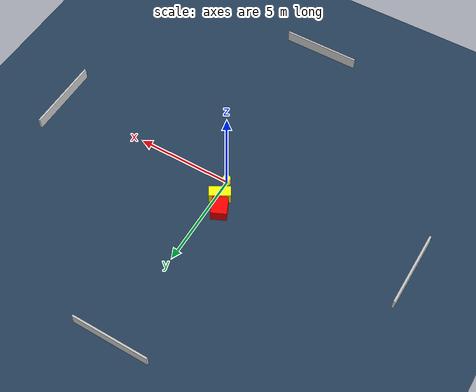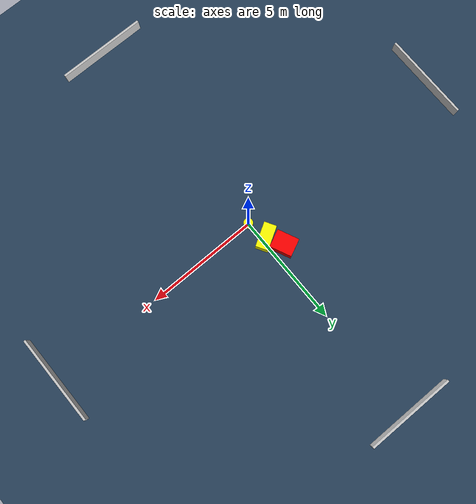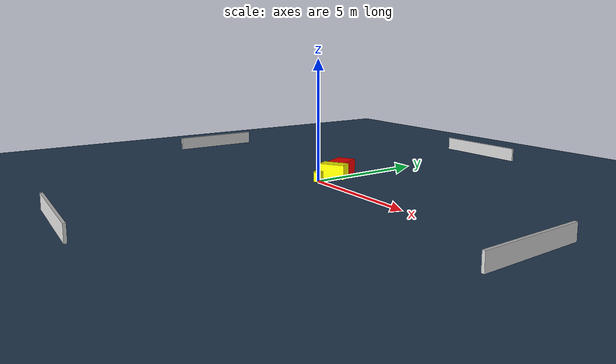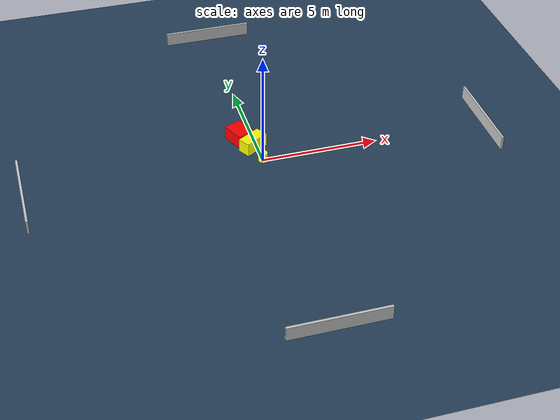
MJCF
<?xml version="1.0" ?>
<mujoco model="generated_environment">
  <option timestep="0.01" integrator="RK4" cone="elliptic"/>
  <default>
    <geom density="1"/>
  </default>
  <asset>
    <texture builtin="gradient" height="3072" name="skybox" rgb1="0.3 0.5 0.7" rgb2="0 0 0" type="skybox" width="512"/>
    <texture builtin="checker" height="300" name="groundplane" rgb1="0.2 0.3 0.4" rgb2="0.1 0.2 0.3" type="2d" width="300"/>
    <material name="groundplane" reflectance="0.2" texrepeat="5 5" texture="groundplane"/>
  </asset>
  <worldbody>
    <light dir="0 0 -1" directional="true" pos="0 0 1.5"/>
    <geom condim="3" friction="0.5 0.005 0.001" material="groundplane" name="floor" pos="0 0 0" size="0 0 0.05" type="plane"/>
    <body name="walls">
      <geom name="wall_1" condim="4" pos="-10.0 0.0 0.3" rgba="0.800000011920929 0.800000011920929 0.800000011920929 1.0" size="0.05 2.0 0.3" type="box"/>
      <geom name="wall_2" condim="4" pos="10.0 0.0 0.3" rgba="0.800000011920929 0.800000011920929 0.800000011920929 1.0" size="0.05 2.0 0.3" type="box"/>
      <geom name="wall_3" condim="4" pos="0.0 -10.0 0.3" rgba="0.800000011920929 0.800000011920929 0.800000011920929 1.0" size="2.0 0.05 0.3" type="box"/>
      <geom name="wall_4" condim="4" pos="0.0 10.0 0.3" rgba="0.800000011920929 0.800000011920929 0.800000011920929 1.0" size="2.0 0.05 0.3" type="box"/>
    </body>
    <body name="robot">
      <joint name="joint_x" type="slide" pos="0 0 0" axis="1 0 0"/>
      <joint name="joint_y" type="slide" pos="0 0 0" axis="0 1 0"/>
      <geom name="robot" type="cylinder" pos="0.0 0.0 0.2" size="0.2 0.2 0.0" mass="5.0" friction="1.0 0.005 0.0001" condim="4" rgba="1.0 1.0 0.0 1.0"/>
    </body>
    <body name="obstacle_1_movable">
      <geom name="obstacle_1_movable" condim="4" pos="-0.1790677332822976 0.93061091559298 0.3" euler="0 0 300.48419446391466" friction="0.0 0.005 0.001" rgba="1.0 1.0 0.0 1.0" size="0.2743763688581575 0.5494592088766136 0.3" type="box" mass="0.1"/>
      <joint type="free"/>
    </body>
    <body name="obstacle_2_static">
      <geom name="obstacle_2_static" condim="4" pos="-0.5754028513146658 1.629719973254022 0.3" euler="0 0 25.112078619000513" friction="0.0 0.005 0.001" rgba="1.0 0.0 0.0 1.0" size="0.39813888485353016 0.4903777439409505 0.3" type="box"/>
    </body>
  </worldbody>
  <actuator>
    <motor name="actuator_x" joint="joint_x" gear="1" ctrlrange="-1 1"/>
    <motor name="actuator_y" joint="joint_y" gear="1" ctrlrange="-1 1"/>
  </actuator>
</mujoco>
